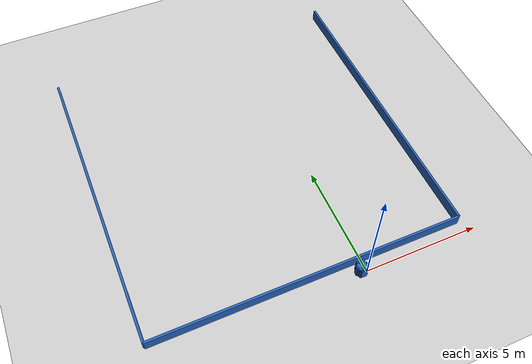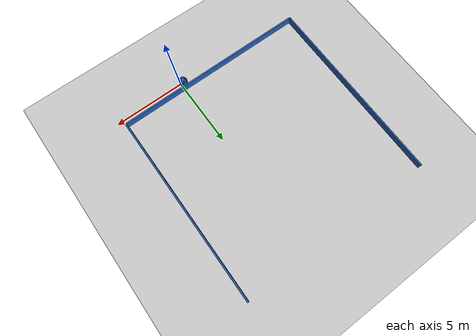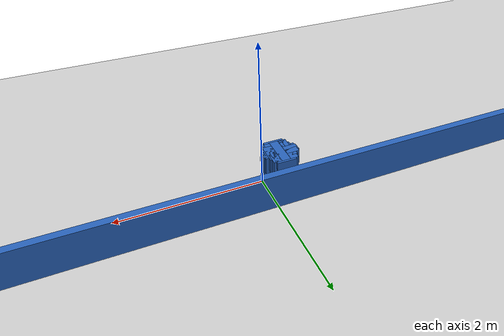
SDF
<?xml version="1.0" ?>
    <sdf version="1.5">
      <world name="default">
        <!-- A global light source -->
        <include>
          <uri>model://sun</uri>
        </include>
        <!-- A ground plane -->
        <include>
          <uri>model://ground_plane</uri>
        </include>

    <model name='libopen_space_final_T2B_84_5'>
      <static>1</static>
      <pose frame=''>-0.225000 0.075000 0.000000 0.000000 0.000000 0.000000</pose>
      <link name='link'>
        <inertial>
          <mass>1</mass>
          <inertia>
            <ixx>0.145833</ixx>
            <ixy>0</ixy>
            <ixz>0</ixz>
            <iyy>0.145833</iyy>
            <iyz>0</iyz>
            <izz>0.125</izz>
          </inertia>
        </inertial>
        <collision name='collision'>
          <geometry>
            <box>
              <size>0.11 0.23 1</size>
            </box>
          </geometry>
          <max_contacts>10</max_contacts>
          <surface>
            <contact>
              <ode/>
            </contact>
            <bounce/>
            <friction>
              <torsional>
                <ode/>
              </torsional>
              <ode/>
            </friction>
          </surface>
        </collision>
        <visual name='visual'>
          <geometry>
            <box>
              <size>0.11 0.23 1</size>
            </box>
          </geometry>
	    <material>
              <ambient>0.152000 0.379000 0.720000 1</ambient>
	      <diffuse>0.152000 0.379000 0.720000 1</diffuse>
          </material>
          <material>
            <script>
              <name>Gazebo/Grey</name>
              <uri>file://media/materials/scripts/gazebo.material</uri>
            </script>
          </material>
        </visual>
        <self_collide>0</self_collide>
        <kinematic>0</kinematic>
        <gravity>1</gravity>
      </link>
      <plugin name='libopen_space_final_T2B_84_5' filename='libopen_space_final_T2B_84_5.so'/>
    </model>

    <model name='libopen_space_final_T2B_109_60'>
      <static>1</static>
      <pose frame=''>-0.225000 0.075000 0.000000 0.000000 0.000000 0.000000</pose>
      <link name='link'>
        <inertial>
          <mass>1</mass>
          <inertia>
            <ixx>0.145833</ixx>
            <ixy>0</ixy>
            <ixz>0</ixz>
            <iyy>0.145833</iyy>
            <iyz>0</iyz>
            <izz>0.125</izz>
          </inertia>
        </inertial>
        <collision name='collision'>
          <geometry>
            <box>
              <size>0.47 0.19 1</size>
            </box>
          </geometry>
          <max_contacts>10</max_contacts>
          <surface>
            <contact>
              <ode/>
            </contact>
            <bounce/>
            <friction>
              <torsional>
                <ode/>
              </torsional>
              <ode/>
            </friction>
          </surface>
        </collision>
        <visual name='visual'>
          <geometry>
            <box>
              <size>0.47 0.19 1</size>
            </box>
          </geometry>
	    <material>
              <ambient>0.152000 0.379000 0.720000 1</ambient>
	      <diffuse>0.152000 0.379000 0.720000 1</diffuse>
          </material>
          <material>
            <script>
              <name>Gazebo/Grey</name>
              <uri>file://media/materials/scripts/gazebo.material</uri>
            </script>
          </material>
        </visual>
        <self_collide>0</self_collide>
        <kinematic>0</kinematic>
        <gravity>1</gravity>
      </link>
      <plugin name='libopen_space_final_T2B_109_60' filename='libopen_space_final_T2B_109_60.so'/>
    </model>

    <model name='libopen_space_final_T2B_71_69'>
      <static>1</static>
      <pose frame=''>-0.225000 0.075000 0.000000 0.000000 0.000000 0.000000</pose>
      <link name='link'>
        <inertial>
          <mass>1</mass>
          <inertia>
            <ixx>0.145833</ixx>
            <ixy>0</ixy>
            <ixz>0</ixz>
            <iyy>0.145833</iyy>
            <iyz>0</iyz>
            <izz>0.125</izz>
          </inertia>
        </inertial>
        <collision name='collision'>
          <geometry>
            <box>
              <size>0.12 0.43 1</size>
            </box>
          </geometry>
          <max_contacts>10</max_contacts>
          <surface>
            <contact>
              <ode/>
            </contact>
            <bounce/>
            <friction>
              <torsional>
                <ode/>
              </torsional>
              <ode/>
            </friction>
          </surface>
        </collision>
        <visual name='visual'>
          <geometry>
            <box>
              <size>0.12 0.43 1</size>
            </box>
          </geometry>
	    <material>
              <ambient>0.152000 0.379000 0.720000 1</ambient>
	      <diffuse>0.152000 0.379000 0.720000 1</diffuse>
          </material>
          <material>
            <script>
              <name>Gazebo/Grey</name>
              <uri>file://media/materials/scripts/gazebo.material</uri>
            </script>
          </material>
        </visual>
        <self_collide>0</self_collide>
        <kinematic>0</kinematic>
        <gravity>1</gravity>
      </link>
      <plugin name='libopen_space_final_T2B_71_69' filename='libopen_space_final_T2B_71_69.so'/>
    </model>

    <model name='libopen_space_final_T2B_51_19'>
      <static>1</static>
      <pose frame=''>-0.225000 0.075000 0.000000 0.000000 0.000000 0.000000</pose>
      <link name='link'>
        <inertial>
          <mass>1</mass>
          <inertia>
            <ixx>0.145833</ixx>
            <ixy>0</ixy>
            <ixz>0</ixz>
            <iyy>0.145833</iyy>
            <iyz>0</iyz>
            <izz>0.125</izz>
          </inertia>
        </inertial>
        <collision name='collision'>
          <geometry>
            <box>
              <size>0.21 0.33 1</size>
            </box>
          </geometry>
          <max_contacts>10</max_contacts>
          <surface>
            <contact>
              <ode/>
            </contact>
            <bounce/>
            <friction>
              <torsional>
                <ode/>
              </torsional>
              <ode/>
            </friction>
          </surface>
        </collision>
        <visual name='visual'>
          <geometry>
            <box>
              <size>0.21 0.33 1</size>
            </box>
          </geometry>
	    <material>
              <ambient>0.152000 0.379000 0.720000 1</ambient>
	      <diffuse>0.152000 0.379000 0.720000 1</diffuse>
          </material>
          <material>
            <script>
              <name>Gazebo/Grey</name>
              <uri>file://media/materials/scripts/gazebo.material</uri>
            </script>
          </material>
        </visual>
        <self_collide>0</self_collide>
        <kinematic>0</kinematic>
        <gravity>1</gravity>
      </link>
      <plugin name='libopen_space_final_T2B_51_19' filename='libopen_space_final_T2B_51_19.so'/>
    </model>

    <model name='libopen_space_final_T2B_67_47'>
      <static>1</static>
      <pose frame=''>-0.225000 0.075000 0.000000 0.000000 0.000000 0.000000</pose>
      <link name='link'>
        <inertial>
          <mass>1</mass>
          <inertia>
            <ixx>0.145833</ixx>
            <ixy>0</ixy>
            <ixz>0</ixz>
            <iyy>0.145833</iyy>
            <iyz>0</iyz>
            <izz>0.125</izz>
          </inertia>
        </inertial>
        <collision name='collision'>
          <geometry>
            <box>
              <size>0.42 0.11 1</size>
            </box>
          </geometry>
          <max_contacts>10</max_contacts>
          <surface>
            <contact>
              <ode/>
            </contact>
            <bounce/>
            <friction>
              <torsional>
                <ode/>
              </torsional>
              <ode/>
            </friction>
          </surface>
        </collision>
        <visual name='visual'>
          <geometry>
            <box>
              <size>0.42 0.11 1</size>
            </box>
          </geometry>
	    <material>
              <ambient>0.152000 0.379000 0.720000 1</ambient>
	      <diffuse>0.152000 0.379000 0.720000 1</diffuse>
          </material>
          <material>
            <script>
              <name>Gazebo/Grey</name>
              <uri>file://media/materials/scripts/gazebo.material</uri>
            </script>
          </material>
        </visual>
        <self_collide>0</self_collide>
        <kinematic>0</kinematic>
        <gravity>1</gravity>
      </link>
      <plugin name='libopen_space_final_T2B_67_47' filename='libopen_space_final_T2B_67_47.so'/>
    </model>

    <model name='libopen_space_final_T2B_112_98'>
      <static>1</static>
      <pose frame=''>-0.225000 0.075000 0.000000 0.000000 0.000000 0.000000</pose>
      <link name='link'>
        <inertial>
          <mass>1</mass>
          <inertia>
            <ixx>0.145833</ixx>
            <ixy>0</ixy>
            <ixz>0</ixz>
            <iyy>0.145833</iyy>
            <iyz>0</iyz>
            <izz>0.125</izz>
          </inertia>
        </inertial>
        <collision name='collision'>
          <geometry>
            <box>
              <size>0.50 0.13 1</size>
            </box>
          </geometry>
          <max_contacts>10</max_contacts>
          <surface>
            <contact>
              <ode/>
            </contact>
            <bounce/>
            <friction>
              <torsional>
                <ode/>
              </torsional>
              <ode/>
            </friction>
          </surface>
        </collision>
        <visual name='visual'>
          <geometry>
            <box>
              <size>0.50 0.13 1</size>
            </box>
          </geometry>
	    <material>
              <ambient>0.152000 0.379000 0.720000 1</ambient>
	      <diffuse>0.152000 0.379000 0.720000 1</diffuse>
          </material>
          <material>
            <script>
              <name>Gazebo/Grey</name>
              <uri>file://media/materials/scripts/gazebo.material</uri>
            </script>
          </material>
        </visual>
        <self_collide>0</self_collide>
        <kinematic>0</kinematic>
        <gravity>1</gravity>
      </link>
      <plugin name='libopen_space_final_T2B_112_98' filename='libopen_space_final_T2B_112_98.so'/>
    </model>

    <model name='libopen_space_final_T2B_123_20'>
      <static>1</static>
      <pose frame=''>-0.225000 0.075000 0.000000 0.000000 0.000000 0.000000</pose>
      <link name='link'>
        <inertial>
          <mass>1</mass>
          <inertia>
            <ixx>0.145833</ixx>
            <ixy>0</ixy>
            <ixz>0</ixz>
            <iyy>0.145833</iyy>
            <iyz>0</iyz>
            <izz>0.125</izz>
          </inertia>
        </inertial>
        <collision name='collision'>
          <geometry>
            <box>
              <size>0.38 0.29 1</size>
            </box>
          </geometry>
          <max_contacts>10</max_contacts>
          <surface>
            <contact>
              <ode/>
            </contact>
            <bounce/>
            <friction>
              <torsional>
                <ode/>
              </torsional>
              <ode/>
            </friction>
          </surface>
        </collision>
        <visual name='visual'>
          <geometry>
            <box>
              <size>0.38 0.29 1</size>
            </box>
          </geometry>
	    <material>
              <ambient>0.152000 0.379000 0.720000 1</ambient>
	      <diffuse>0.152000 0.379000 0.720000 1</diffuse>
          </material>
          <material>
            <script>
              <name>Gazebo/Grey</name>
              <uri>file://media/materials/scripts/gazebo.material</uri>
            </script>
          </material>
        </visual>
        <self_collide>0</self_collide>
        <kinematic>0</kinematic>
        <gravity>1</gravity>
      </link>
      <plugin name='libopen_space_final_T2B_123_20' filename='libopen_space_final_T2B_123_20.so'/>
    </model>

    <model name='libopen_space_final_T2B_139_84'>
      <static>1</static>
      <pose frame=''>-0.225000 0.075000 0.000000 0.000000 0.000000 0.000000</pose>
      <link name='link'>
        <inertial>
          <mass>1</mass>
          <inertia>
            <ixx>0.145833</ixx>
            <ixy>0</ixy>
            <ixz>0</ixz>
            <iyy>0.145833</iyy>
            <iyz>0</iyz>
            <izz>0.125</izz>
          </inertia>
        </inertial>
        <collision name='collision'>
          <geometry>
            <box>
              <size>0.29 0.41 1</size>
            </box>
          </geometry>
          <max_contacts>10</max_contacts>
          <surface>
            <contact>
              <ode/>
            </contact>
            <bounce/>
            <friction>
              <torsional>
                <ode/>
              </torsional>
              <ode/>
            </friction>
          </surface>
        </collision>
        <visual name='visual'>
          <geometry>
            <box>
              <size>0.29 0.41 1</size>
            </box>
          </geometry>
	    <material>
              <ambient>0.152000 0.379000 0.720000 1</ambient>
	      <diffuse>0.152000 0.379000 0.720000 1</diffuse>
          </material>
          <material>
            <script>
              <name>Gazebo/Grey</name>
              <uri>file://media/materials/scripts/gazebo.material</uri>
            </script>
          </material>
        </visual>
        <self_collide>0</self_collide>
        <kinematic>0</kinematic>
        <gravity>1</gravity>
      </link>
      <plugin name='libopen_space_final_T2B_139_84' filename='libopen_space_final_T2B_139_84.so'/>
    </model>

    <model name='libopen_space_final_T2B_126_41'>
      <static>1</static>
      <pose frame=''>-0.225000 0.075000 0.000000 0.000000 0.000000 0.000000</pose>
      <link name='link'>
        <inertial>
          <mass>1</mass>
          <inertia>
            <ixx>0.145833</ixx>
            <ixy>0</ixy>
            <ixz>0</ixz>
            <iyy>0.145833</iyy>
            <iyz>0</iyz>
            <izz>0.125</izz>
          </inertia>
        </inertial>
        <collision name='collision'>
          <geometry>
            <box>
              <size>0.27 0.49 1</size>
            </box>
          </geometry>
          <max_contacts>10</max_contacts>
          <surface>
            <contact>
              <ode/>
            </contact>
            <bounce/>
            <friction>
              <torsional>
                <ode/>
              </torsional>
              <ode/>
            </friction>
          </surface>
        </collision>
        <visual name='visual'>
          <geometry>
            <box>
              <size>0.27 0.49 1</size>
            </box>
          </geometry>
	    <material>
              <ambient>0.152000 0.379000 0.720000 1</ambient>
	      <diffuse>0.152000 0.379000 0.720000 1</diffuse>
          </material>
          <material>
            <script>
              <name>Gazebo/Grey</name>
              <uri>file://media/materials/scripts/gazebo.material</uri>
            </script>
          </material>
        </visual>
        <self_collide>0</self_collide>
        <kinematic>0</kinematic>
        <gravity>1</gravity>
      </link>
      <plugin name='libopen_space_final_T2B_126_41' filename='libopen_space_final_T2B_126_41.so'/>
    </model>

    <model name='libopen_space_final_T2B_118_43'>
      <static>1</static>
      <pose frame=''>-0.225000 0.075000 0.000000 0.000000 0.000000 0.000000</pose>
      <link name='link'>
        <inertial>
          <mass>1</mass>
          <inertia>
            <ixx>0.145833</ixx>
            <ixy>0</ixy>
            <ixz>0</ixz>
            <iyy>0.145833</iyy>
            <iyz>0</iyz>
            <izz>0.125</izz>
          </inertia>
        </inertial>
        <collision name='collision'>
          <geometry>
            <box>
              <size>0.13 0.16 1</size>
            </box>
          </geometry>
          <max_contacts>10</max_contacts>
          <surface>
            <contact>
              <ode/>
            </contact>
            <bounce/>
            <friction>
              <torsional>
                <ode/>
              </torsional>
              <ode/>
            </friction>
          </surface>
        </collision>
        <visual name='visual'>
          <geometry>
            <box>
              <size>0.13 0.16 1</size>
            </box>
          </geometry>
	    <material>
              <ambient>0.152000 0.379000 0.720000 1</ambient>
	      <diffuse>0.152000 0.379000 0.720000 1</diffuse>
          </material>
          <material>
            <script>
              <name>Gazebo/Grey</name>
              <uri>file://media/materials/scripts/gazebo.material</uri>
            </script>
          </material>
        </visual>
        <self_collide>0</self_collide>
        <kinematic>0</kinematic>
        <gravity>1</gravity>
      </link>
      <plugin name='libopen_space_final_T2B_118_43' filename='libopen_space_final_T2B_118_43.so'/>
    </model>

    <model name='libopen_space_final_T2B_125_59'>
      <static>1</static>
      <pose frame=''>-0.225000 0.075000 0.000000 0.000000 0.000000 0.000000</pose>
      <link name='link'>
        <inertial>
          <mass>1</mass>
          <inertia>
            <ixx>0.145833</ixx>
            <ixy>0</ixy>
            <ixz>0</ixz>
            <iyy>0.145833</iyy>
            <iyz>0</iyz>
            <izz>0.125</izz>
          </inertia>
        </inertial>
        <collision name='collision'>
          <geometry>
            <box>
              <size>0.34 0.43 1</size>
            </box>
          </geometry>
          <max_contacts>10</max_contacts>
          <surface>
            <contact>
              <ode/>
            </contact>
            <bounce/>
            <friction>
              <torsional>
                <ode/>
              </torsional>
              <ode/>
            </friction>
          </surface>
        </collision>
        <visual name='visual'>
          <geometry>
            <box>
              <size>0.34 0.43 1</size>
            </box>
          </geometry>
	    <material>
              <ambient>0.152000 0.379000 0.720000 1</ambient>
	      <diffuse>0.152000 0.379000 0.720000 1</diffuse>
          </material>
          <material>
            <script>
              <name>Gazebo/Grey</name>
              <uri>file://media/materials/scripts/gazebo.material</uri>
            </script>
          </material>
        </visual>
        <self_collide>0</self_collide>
        <kinematic>0</kinematic>
        <gravity>1</gravity>
      </link>
      <plugin name='libopen_space_final_T2B_125_59' filename='libopen_space_final_T2B_125_59.so'/>
    </model>

        <model name='bottom_wall'>
          <static>1</static>
          <pose frame=''>-2.25 0.5 0.000000 0.000000 0.000000 1.57079632</pose>
          <link name='link'>
            <inertial>
            <mass>1</mass>
            <inertia>
              <ixx>0.145833</ixx>
              <ixy>0</ixy>
              <ixz>0</ixz>
              <iyy>0.145833</iyy>
              <iyz>0</iyz>
              <izz>0.125</izz>
            </inertia>
            </inertial>
            <collision name='collision'>
            <geometry>
              <box>
              <size>0.1 13.5 1</size>
              </box>
            </geometry>
            <max_contacts>10</max_contacts>
            <surface>
              <contact>
              <ode/>
              </contact>
              <bounce/>
              <friction>
              <torsional>
                <ode/>
              </torsional>
              <ode/>
              </friction>
            </surface>
            </collision>
            <visual name='visual'>
            <geometry>
              <box>
              <size>0.1 13.5 1</size>
              </box>
            </geometry>
            <material>
              <ambient>0.152000 0.379000 0.720000 1</ambient>
            <diffuse>0.152000 0.379000 0.720000 1</diffuse>
            </material>
            <material>
              <script>
              <name>Gazebo/Grey</name>
              <uri>file://media/materials/scripts/gazebo.material</uri>
              </script>
            </material>
            </visual>
            <self_collide>0</self_collide>
            <kinematic>0</kinematic>
            <gravity>1</gravity>
          </link>
        </model>

        <model name='left_wall'>
          <static>1</static>
          <pose frame=''>-9 7.25 0.000000 0.000000 0.000000 0.000000</pose>
          <link name='link'>
            <inertial>
            <mass>1</mass>
            <inertia>
              <ixx>0.145833</ixx>
              <ixy>0</ixy>
              <ixz>0</ixz>
              <iyy>0.145833</iyy>
              <iyz>0</iyz>
              <izz>0.125</izz>
            </inertia>
            </inertial>
            <collision name='collision'>
            <geometry>
              <box>
              <size>0.1 13.5 1</size>
              </box>
            </geometry>
            <max_contacts>10</max_contacts>
            <surface>
              <contact>
              <ode/>
              </contact>
              <bounce/>
              <friction>
              <torsional>
                <ode/>
              </torsional>
              <ode/>
              </friction>
            </surface>
            </collision>
            <visual name='visual'>
            <geometry>
              <box>
              <size>0.1 13.5 1</size>
              </box>
            </geometry>
            <material>
              <ambient>0.152000 0.379000 0.720000 1</ambient>
            <diffuse>0.152000 0.379000 0.720000 1</diffuse>
            </material>
            <material>
              <script>
              <name>Gazebo/Grey</name>
              <uri>file://media/materials/scripts/gazebo.material</uri>
              </script>
            </material>
            </visual>
            <self_collide>0</self_collide>
            <kinematic>0</kinematic>
            <gravity>1</gravity>
          </link>
        </model>

        <model name='right_wall'>
          <static>1</static>
          <pose frame=''>4.5 7.25 0.000000 0.000000 0.000000 0.000000</pose>
          <link name='link'>
            <inertial>
            <mass>1</mass>
            <inertia>
              <ixx>0.145833</ixx>
              <ixy>0</ixy>
              <ixz>0</ixz>
              <iyy>0.145833</iyy>
              <iyz>0</iyz>
              <izz>0.125</izz>
            </inertia>
            </inertial>
            <collision name='collision'>
            <geometry>
              <box>
              <size>0.1 13.5 1</size>
              </box>
            </geometry>
            <max_contacts>10</max_contacts>
            <surface>
              <contact>
              <ode/>
              </contact>
              <bounce/>
              <friction>
              <torsional>
                <ode/>
              </torsional>
              <ode/>
              </friction>
            </surface>
            </collision>
            <visual name='visual'>
            <geometry>
              <box>
              <size>0.1 13.5 1</size>
              </box>
            </geometry>
            <material>
              <ambient>0.152000 0.379000 0.720000 1</ambient>
            <diffuse>0.152000 0.379000 0.720000 1</diffuse>
            </material>
            <material>
              <script>
              <name>Gazebo/Grey</name>
              <uri>file://media/materials/scripts/gazebo.material</uri>
              </script>
            </material>
            </visual>
            <self_collide>0</self_collide>
            <kinematic>0</kinematic>
            <gravity>1</gravity>
          </link>
        </model>

      </world>
    </sdf>"
